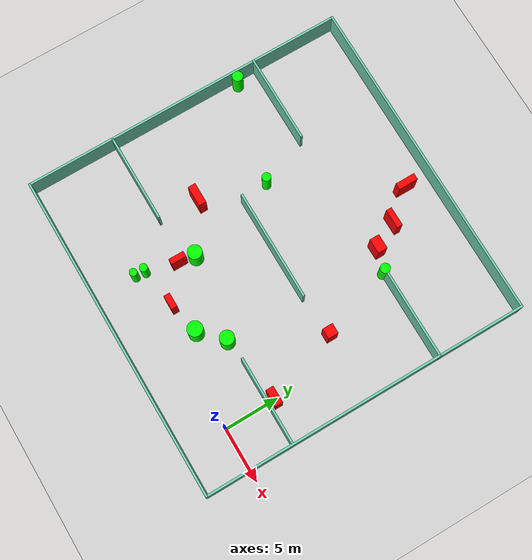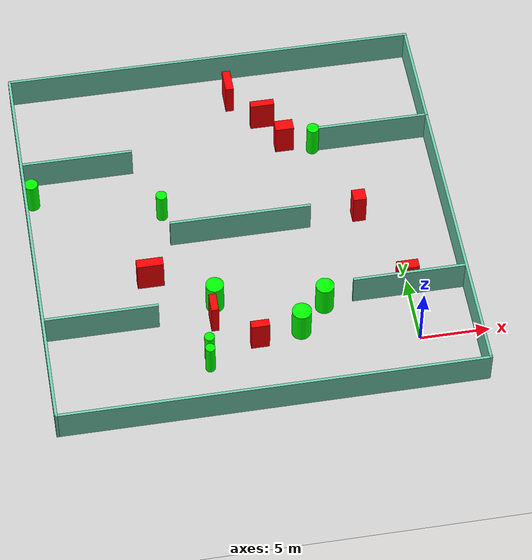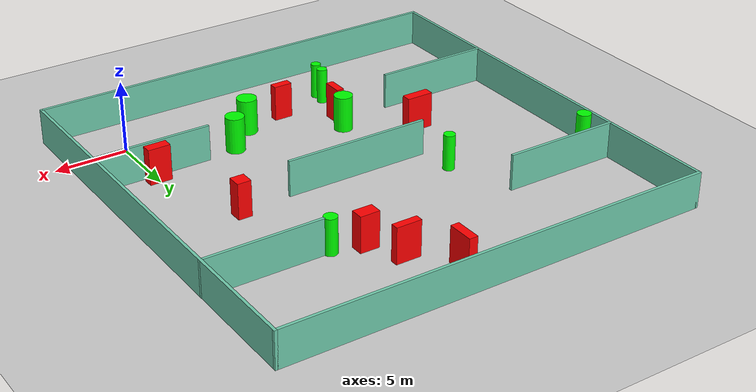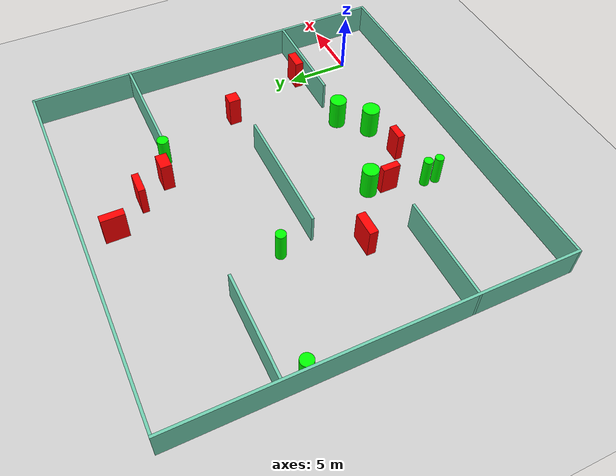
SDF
<sdf version="1.7">
 <world name="default">
  <light name="sun" type="directional">
   <pose>0 0 10 0 -0 0</pose>
   <diffuse>0.8 0.8 0.8 1</diffuse>
   <specular>0.2 0.2 0.2 1</specular>
   <attenuation>
    <range>1000</range>
    <constant>0.9</constant>
    <linear>0.01</linear>
    <quadratic>0.001</quadratic>
   </attenuation>
   <direction>-0.5 0.1 -0.9</direction>
   <spot><inner_angle>0</inner_angle><outer_angle>0</outer_angle><falloff>0</falloff></spot>
  </light>
  <model name="ground_plane">
   <static>1</static>
   <link name="link">
    <collision name="collision">
     <geometry><plane><normal>0 0 1</normal><size>100 100</size></plane></geometry>
     <surface>
      <contact><collide_bitmask>65535</collide_bitmask></contact>
      <friction><ode><mu>100</mu><mu2>50</mu2></ode></friction>
     </surface>
    </collision>
    <visual name="visual">
     <cast_shadows>0</cast_shadows>
     <geometry><plane><normal>0 0 1</normal><size>100 100</size></plane></geometry>
     <material>
      <script><uri>file://media/materials/scripts/gazebo.material</uri><name>Gazebo/Grey</name></script>
     </material>
    </visual>
   </link>
  </model>
  <gravity>0 0 -9.8</gravity>
  <magnetic_field>6e-06 2.3e-05 -4.2e-05</magnetic_field>
  <atmosphere type="adiabatic"/>
  <physics type="ode">
   <max_step_size>0.001</max_step_size>
   <real_time_factor>1</real_time_factor>
   <real_time_update_rate>1000</real_time_update_rate>
  </physics>
  <scene><ambient>0.4 0.4 0.4 1</ambient><background>0.7 0.7 0.7 1</background><shadows>1</shadows></scene>
  <spherical_coordinates>
   <surface_model>EARTH_WGS84</surface_model>
   <latitude_deg>0</latitude_deg>
   <longitude_deg>0</longitude_deg>
   <elevation>0</elevation>
   <heading_deg>0</heading_deg>
  </spherical_coordinates>
  <model name="my_base_walls">
   <link name="Wall_10">
    <collision name="Wall_10_Collision">
     <geometry><box><size>8.2 0.2 2.5</size></box></geometry>
     <pose>0 0 1.25 0 -0 0</pose>
    </collision>
    <visual name="Wall_10_Visual">
     <pose>0 0 1.25 0 -0 0</pose>
     <geometry><box><size>8.2 0.2 2.5</size></box></geometry>
     <material>
      <script><uri>file://media/materials/scripts/gazebo.material</uri><name>Gazebo/Grey</name></script>
      <ambient>0.435294 0.796078 0.67451 1</ambient>
     </material>
     <meta><layer>0</layer></meta>
    </visual>
    <pose>-11 -7 0 0 -0 0</pose>
   </link>
   <link name="Wall_12">
    <collision name="Wall_12_Collision">
     <geometry><box><size>8.2 0.2 2.5</size></box></geometry>
     <pose>0 0 1.25 0 -0 0</pose>
    </collision>
    <visual name="Wall_12_Visual">
     <pose>0 0 1.25 0 -0 0</pose>
     <geometry><box><size>8.2 0.2 2.5</size></box></geometry>
     <material>
      <script><uri>file://media/materials/scripts/gazebo.material</uri><name>Gazebo/Grey</name></script>
      <ambient>0.435294 0.796078 0.67451 1</ambient>
     </material>
     <meta><layer>0</layer></meta>
    </visual>
    <pose>-11 7 0 0 -0 0</pose>
   </link>
   <link name="Wall_14">
    <collision name="Wall_14_Collision">
     <geometry><box><size>8.2 0.2 2.5</size></box></geometry>
     <pose>0 0 1.25 0 -0 0</pose>
    </collision>
    <visual name="Wall_14_Visual">
     <pose>0 0 1.25 0 -0 0</pose>
     <geometry><box><size>8.2 0.2 2.5</size></box></geometry>
     <material>
      <script><uri>file://media/materials/scripts/gazebo.material</uri><name>Gazebo/Grey</name></script>
      <ambient>0.435294 0.796078 0.67451 1</ambient>
     </material>
     <meta><layer>0</layer></meta>
    </visual>
    <pose>11 7 0 0 -0 3.14159</pose>
   </link>
   <link name="Wall_16">
    <collision name="Wall_16_Collision">
     <geometry><box><size>10.2 0.2 2.5</size></box></geometry>
     <pose>0 0 1.25 0 -0 0</pose>
    </collision>
    <visual name="Wall_16_Visual">
     <pose>0 0 1.25 0 -0 0</pose>
     <geometry><box><size>10.2 0.2 2.5</size></box></geometry>
     <material>
      <script><uri>file://media/materials/scripts/gazebo.material</uri><name>Gazebo/Grey</name></script>
      <ambient>0.435294 0.796078 0.67451 1</ambient>
     </material>
     <meta><layer>0</layer></meta>
    </visual>
    <pose>0 0 0 0 -0 3.14159</pose>
   </link>
   <link name="Wall_2">
    <collision name="Wall_2_Collision">
     <geometry><box><size>30.2 0.2 2.5</size></box></geometry>
     <pose>0 0 1.25 0 -0 0</pose>
    </collision>
    <visual name="Wall_2_Visual">
     <pose>0 0 1.25 0 -0 0</pose>
     <geometry><box><size>30.2 0.2 2.5</size></box></geometry>
     <material>
      <script><uri>file://media/materials/scripts/gazebo.material</uri><name>Gazebo/Grey</name></script>
      <ambient>0.435294 0.796078 0.67451 1</ambient>
     </material>
     <meta><layer>0</layer></meta>
    </visual>
    <pose>0 -15 0 0 -0 3.14159</pose>
   </link>
   <link name="Wall_3">
    <collision name="Wall_3_Collision">
     <geometry><box><size>30.2 0.2 2.5</size></box></geometry>
     <pose>0 0 1.25 0 -0 0</pose>
    </collision>
    <visual name="Wall_3_Visual">
     <pose>0 0 1.25 0 -0 0</pose>
     <geometry><box><size>30.2 0.2 2.5</size></box></geometry>
     <material>
      <script><uri>file://media/materials/scripts/gazebo.material</uri><name>Gazebo/Grey</name></script>
      <ambient>0.435294 0.796078 0.67451 1</ambient>
     </material>
     <meta><layer>0</layer></meta>
    </visual>
    <pose>-15 0 0 0 -0 1.5708</pose>
   </link>
   <link name="Wall_4">
    <collision name="Wall_4_Collision">
     <geometry><box><size>30.2 0.2 2.5</size></box></geometry>
     <pose>0 0 1.25 0 -0 0</pose>
    </collision>
    <visual name="Wall_4_Visual">
     <pose>0 0 1.25 0 -0 0</pose>
     <geometry><box><size>30.2 0.2 2.5</size></box></geometry>
     <material>
      <script><uri>file://media/materials/scripts/gazebo.material</uri><name>Gazebo/Grey</name></script>
      <ambient>0.435294 0.796078 0.67451 1</ambient>
     </material>
     <meta><layer>0</layer></meta>
    </visual>
    <pose>0 15 0 0 -0 0</pose>
   </link>
   <link name="Wall_6">
    <collision name="Wall_6_Collision">
     <geometry><box><size>30.2 0.2 2.5</size></box></geometry>
     <pose>0 0 1.25 0 -0 0</pose>
    </collision>
    <visual name="Wall_6_Visual">
     <pose>0 0 1.25 0 -0 0</pose>
     <geometry><box><size>30.2 0.2 2.5</size></box></geometry>
     <material>
      <script><uri>file://media/materials/scripts/gazebo.material</uri><name>Gazebo/Grey</name></script>
      <ambient>0.435294 0.796078 0.67451 1</ambient>
     </material>
     <meta><layer>0</layer></meta>
    </visual>
    <pose>15 0 0 0 -0 1.5708</pose>
   </link>
   <link name="Wall_8">
    <collision name="Wall_8_Collision">
     <geometry><box><size>8.2 0.2 2.5</size></box></geometry>
     <pose>0 0 1.25 0 -0 0</pose>
    </collision>
    <visual name="Wall_8_Visual">
     <pose>0 0 1.25 0 -0 0</pose>
     <geometry><box><size>8.2 0.2 2.5</size></box></geometry>
     <material>
      <script><uri>file://media/materials/scripts/gazebo.material</uri><name>Gazebo/Grey</name></script>
      <ambient>0.435294 0.796078 0.67451 1</ambient>
     </material>
     <meta><layer>0</layer></meta>
    </visual>
    <pose>11 -7 0 0 -0 3.14159</pose>
   </link>
   <static>1</static>
   <pose>-11 11 0 0 -0 0</pose>
  </model>
  <model name="cylinder1">
   <static>1</static>
   <link name="link">
    <inertial>
     <mass>1</mass>
     <inertia><ixx>0.5</ixx><ixy>0</ixy><ixz>0</ixz><iyy>0.5</iyy><iyz>0</iyz><izz>1</izz></inertia>
    </inertial>
    <collision name="collision">
     <geometry><cylinder><radius>0.35888137583337265</radius><length>2.5</length></cylinder></geometry>
    </collision>
    <visual name="visual">
     <geometry><cylinder><radius>0.35888137583337265</radius><length>2.5</length></cylinder></geometry>
     <material>
      <ambient>0 1 0 1</ambient>
      <diffuse>0 1 0 1</diffuse>
      <specular>0.1 0.1 0.1 1</specular>
      <emissive>0 0 0 0</emissive>
     </material>
    </visual>
   </link>
   <pose>-14.800472974584556 0.7684433232465304 1.25 0 0 0</pose>
  </model>
  <model name="cylinder2">
   <static>1</static>
   <link name="link">
    <inertial>
     <mass>1</mass>
     <inertia><ixx>0.5</ixx><ixy>0</ixy><ixz>0</ixz><iyy>0.5</iyy><iyz>0</iyz><izz>1</izz></inertia>
    </inertial>
    <collision name="collision">
     <geometry><cylinder><radius>0.6444078868004651</radius><length>2.5</length></cylinder></geometry>
    </collision>
    <visual name="visual">
     <geometry><cylinder><radius>0.6444078868004651</radius><length>2.5</length></cylinder></geometry>
     <material>
      <ambient>0 1 0 1</ambient>
      <diffuse>0 1 0 1</diffuse>
      <specular>0.1 0.1 0.1 1</specular>
      <emissive>0 0 0 0</emissive>
     </material>
    </visual>
   </link>
   <pose>-13.77166727941637 5.095694531775308 1.25 0 0 0</pose>
  </model>
  <model name="cylinder3">
   <static>1</static>
   <link name="link">
    <inertial>
     <mass>1</mass>
     <inertia><ixx>0.5</ixx><ixy>0</ixy><ixz>0</ixz><iyy>0.5</iyy><iyz>0</iyz><izz>1</izz></inertia>
    </inertial>
    <collision name="collision">
     <geometry><cylinder><radius>0.4897141702440644</radius><length>2.5</length></cylinder></geometry>
    </collision>
    <visual name="visual">
     <geometry><cylinder><radius>0.4897141702440644</radius><length>2.5</length></cylinder></geometry>
     <material>
      <ambient>0 1 0 1</ambient>
      <diffuse>0 1 0 1</diffuse>
      <specular>0.1 0.1 0.1 1</specular>
      <emissive>0 0 0 0</emissive>
     </material>
    </visual>
   </link>
   <pose>-25.477867785344234 16.07333065835223 1.25 0 0 0</pose>
  </model>
  <model name="cylinder4">
   <static>1</static>
   <link name="link">
    <inertial>
     <mass>1</mass>
     <inertia><ixx>0.5</ixx><ixy>0</ixy><ixz>0</ixz><iyy>0.5</iyy><iyz>0</iyz><izz>1</izz></inertia>
    </inertial>
    <collision name="collision">
     <geometry><cylinder><radius>0.4459564544500559</radius><length>2.5</length></cylinder></geometry>
    </collision>
    <visual name="visual">
     <geometry><cylinder><radius>0.4459564544500559</radius><length>2.5</length></cylinder></geometry>
     <material>
      <ambient>0 1 0 1</ambient>
      <diffuse>0 1 0 1</diffuse>
      <specular>0.1 0.1 0.1 1</specular>
      <emissive>0 0 0 0</emissive>
     </material>
    </visual>
   </link>
   <pose>-4.478116844944312 18.03272754851267 1.25 0 0 0</pose>
  </model>
  <model name="cylinder5">
   <static>1</static>
   <link name="link">
    <inertial>
     <mass>1</mass>
     <inertia><ixx>0.5</ixx><ixy>0</ixy><ixz>0</ixz><iyy>0.5</iyy><iyz>0</iyz><izz>1</izz></inertia>
    </inertial>
    <collision name="collision">
     <geometry><cylinder><radius>0.39902212339663445</radius><length>2.5</length></cylinder></geometry>
    </collision>
    <visual name="visual">
     <geometry><cylinder><radius>0.39902212339663445</radius><length>2.5</length></cylinder></geometry>
     <material>
      <ambient>0 1 0 1</ambient>
      <diffuse>0 1 0 1</diffuse>
      <specular>0.1 0.1 0.1 1</specular>
      <emissive>0 0 0 0</emissive>
     </material>
    </visual>
   </link>
   <pose>-16.343795756342956 13.583446711220187 1.25 0 0 0</pose>
  </model>
  <model name="cylinder6">
   <static>1</static>
   <link name="link">
    <inertial>
     <mass>1</mass>
     <inertia><ixx>0.5</ixx><ixy>0</ixy><ixz>0</ixz><iyy>0.5</iyy><iyz>0</iyz><izz>1</izz></inertia>
    </inertial>
    <collision name="collision">
     <geometry><cylinder><radius>0.34318770206753446</radius><length>2.5</length></cylinder></geometry>
    </collision>
    <visual name="visual">
     <geometry><cylinder><radius>0.34318770206753446</radius><length>2.5</length></cylinder></geometry>
     <material>
      <ambient>0 1 0 1</ambient>
      <diffuse>0 1 0 1</diffuse>
      <specular>0.1 0.1 0.1 1</specular>
      <emissive>0 0 0 0</emissive>
     </material>
    </visual>
   </link>
   <pose>-14.885735074433711 -0.15364434477985034 1.25 0 0 0</pose>
  </model>
  <model name="cylinder7">
   <static>1</static>
   <link name="link">
    <inertial>
     <mass>1</mass>
     <inertia><ixx>0.5</ixx><ixy>0</ixy><ixz>0</ixz><iyy>0.5</iyy><iyz>0</iyz><izz>1</izz></inertia>
    </inertial>
    <collision name="collision">
     <geometry><cylinder><radius>0.6532046173508238</radius><length>2.5</length></cylinder></geometry>
    </collision>
    <visual name="visual">
     <geometry><cylinder><radius>0.6532046173508238</radius><length>2.5</length></cylinder></geometry>
     <material>
      <ambient>0 1 0 1</ambient>
      <diffuse>0 1 0 1</diffuse>
      <specular>0.1 0.1 0.1 1</specular>
      <emissive>0 0 0 0</emissive>
     </material>
    </visual>
   </link>
   <pose>-6.155299551574217 3.783226294448003 1.25 0 0 0</pose>
  </model>
  <model name="cylinder8">
   <static>1</static>
   <link name="link">
    <inertial>
     <mass>1</mass>
     <inertia><ixx>0.5</ixx><ixy>0</ixy><ixz>0</ixz><iyy>0.5</iyy><iyz>0</iyz><izz>1</izz></inertia>
    </inertial>
    <collision name="collision">
     <geometry><cylinder><radius>0.6895210541287279</radius><length>2.5</length></cylinder></geometry>
    </collision>
    <visual name="visual">
     <geometry><cylinder><radius>0.6895210541287279</radius><length>2.5</length></cylinder></geometry>
     <material>
      <ambient>0 1 0 1</ambient>
      <diffuse>0 1 0 1</diffuse>
      <specular>0.1 0.1 0.1 1</specular>
      <emissive>0 0 0 0</emissive>
     </material>
    </visual>
   </link>
   <pose>-8.135792056397651 1.8898511625572674 1.25 0 0 0</pose>
  </model>
  <model name="box1">
   <static>1</static>
   <link name="link">
    <inertial>
     <mass>1</mass>
     <inertia><ixx>0.083</ixx><ixy>0</ixy><ixz>0</ixz><iyy>0.083</iyy><iyz>0</iyz><izz>0.083</izz></inertia>
    </inertial>
    <collision name="collision">
     <geometry><box><size>1.900327875069905 0.6883442123304547 2.5</size></box></geometry>
    </collision>
    <visual name="visual">
     <geometry><box><size>1.900327875069905 0.6883442123304547 2.5</size></box></geometry>
     <material>
      <ambient>1 0 0 1</ambient>
      <diffuse>1 0 0 1</diffuse>
      <specular>0.1 0.1 0.1 1</specular>
      <emissive>0 0 0 0</emissive>
     </material>
    </visual>
    <sensor name="my_contact" type="contact">
     <contact><collision>box_collision</collision><topic>__default_topic__</topic></contact>
    </sensor>
   </link>
   <pose>-17.994369034501567 7.74879411769659 1.25 0 0 0</pose>
  </model>
  <model name="box2">
   <static>1</static>
   <link name="link">
    <inertial>
     <mass>1</mass>
     <inertia><ixx>0.083</ixx><ixy>0</ixy><ixz>0</ixz><iyy>0.083</iyy><iyz>0</iyz><izz>0.083</izz></inertia>
    </inertial>
    <collision name="collision">
     <geometry><box><size>1.5404613427093783 0.6992877625048404 2.5</size></box></geometry>
    </collision>
    <visual name="visual">
     <geometry><box><size>1.5404613427093783 0.6992877625048404 2.5</size></box></geometry>
     <material>
      <ambient>1 0 0 1</ambient>
      <diffuse>1 0 0 1</diffuse>
      <specular>0.1 0.1 0.1 1</specular>
      <emissive>0 0 0 0</emissive>
     </material>
    </visual>
    <sensor name="my_contact" type="contact">
     <contact><collision>box_collision</collision><topic>__default_topic__</topic></contact>
    </sensor>
   </link>
   <pose>-0.058694419051420255 4.680402535411012 1.25 0 0 0</pose>
  </model>
  <model name="box3">
   <static>1</static>
   <link name="link">
    <inertial>
     <mass>1</mass>
     <inertia><ixx>0.083</ixx><ixy>0</ixy><ixz>0</ixz><iyy>0.083</iyy><iyz>0</iyz><izz>0.083</izz></inertia>
    </inertial>
    <collision name="collision">
     <geometry><box><size>0.5983717381779028 1.8074083056456256 2.5</size></box></geometry>
    </collision>
    <visual name="visual">
     <geometry><box><size>0.5983717381779028 1.8074083056456256 2.5</size></box></geometry>
     <material>
      <ambient>1 0 0 1</ambient>
      <diffuse>1 0 0 1</diffuse>
      <specular>0.1 0.1 0.1 1</specular>
      <emissive>0 0 0 0</emissive>
     </material>
    </visual>
    <sensor name="my_contact" type="contact">
     <contact><collision>box_collision</collision><topic>__default_topic__</topic></contact>
    </sensor>
   </link>
   <pose>-9.92810377923147 23.58971529015581 1.25 0 0 0</pose>
  </model>
  <model name="box4">
   <static>1</static>
   <link name="link">
    <inertial>
     <mass>1</mass>
     <inertia><ixx>0.083</ixx><ixy>0</ixy><ixz>0</ixz><iyy>0.083</iyy><iyz>0</iyz><izz>0.083</izz></inertia>
    </inertial>
    <collision name="collision">
     <geometry><box><size>1.3516057868846847 0.8809104700976135 2.5</size></box></geometry>
    </collision>
    <visual name="visual">
     <geometry><box><size>1.3516057868846847 0.8809104700976135 2.5</size></box></geometry>
     <material>
      <ambient>1 0 0 1</ambient>
      <diffuse>1 0 0 1</diffuse>
      <specular>0.1 0.1 0.1 1</specular>
      <emissive>0 0 0 0</emissive>
     </material>
    </visual>
    <sensor name="my_contact" type="contact">
     <contact><collision>box_collision</collision><topic>__default_topic__</topic></contact>
    </sensor>
   </link>
   <pose>-6.531515865246272 18.660286367864913 1.25 0 0 0</pose>
  </model>
  <model name="box5">
   <static>1</static>
   <link name="link">
    <inertial>
     <mass>1</mass>
     <inertia><ixx>0.083</ixx><ixy>0</ixy><ixz>0</ixz><iyy>0.083</iyy><iyz>0</iyz><izz>0.083</izz></inertia>
    </inertial>
    <collision name="collision">
     <geometry><box><size>0.5287421549843658 1.3940753188339414 2.5</size></box></geometry>
    </collision>
    <visual name="visual">
     <geometry><box><size>0.5287421549843658 1.3940753188339414 2.5</size></box></geometry>
     <material>
      <ambient>1 0 0 1</ambient>
      <diffuse>1 0 0 1</diffuse>
      <specular>0.1 0.1 0.1 1</specular>
      <emissive>0 0 0 0</emissive>
     </material>
    </visual>
    <sensor name="my_contact" type="contact">
     <contact><collision>box_collision</collision><topic>__default_topic__</topic></contact>
    </sensor>
   </link>
   <pose>-14.070128925466953 3.612275935493315 1.25 0 0 0</pose>
  </model>
  <model name="box6">
   <static>1</static>
   <link name="link">
    <inertial>
     <mass>1</mass>
     <inertia><ixx>0.083</ixx><ixy>0</ixy><ixz>0</ixz><iyy>0.083</iyy><iyz>0</iyz><izz>0.083</izz></inertia>
    </inertial>
    <collision name="collision">
     <geometry><box><size>1.3011076005979914 0.5686365499712489 2.5</size></box></geometry>
    </collision>
    <visual name="visual">
     <geometry><box><size>1.3011076005979914 0.5686365499712489 2.5</size></box></geometry>
     <material>
      <ambient>1 0 0 1</ambient>
      <diffuse>1 0 0 1</diffuse>
      <specular>0.1 0.1 0.1 1</specular>
      <emissive>0 0 0 0</emissive>
     </material>
    </visual>
    <sensor name="my_contact" type="contact">
     <contact><collision>box_collision</collision><topic>__default_topic__</topic></contact>
    </sensor>
   </link>
   <pose>-11.173105385396617 1.3023775964511648 1.25 0 0 0</pose>
  </model>
  <model name="box7">
   <static>1</static>
   <link name="link">
    <inertial>
     <mass>1</mass>
     <inertia><ixx>0.083</ixx><ixy>0</ixy><ixz>0</ixz><iyy>0.083</iyy><iyz>0</iyz><izz>0.083</izz></inertia>
    </inertial>
    <collision name="collision">
     <geometry><box><size>1.756518836805367 0.5231622504533522 2.5</size></box></geometry>
    </collision>
    <visual name="visual">
     <geometry><box><size>1.756518836805367 0.5231622504533522 2.5</size></box></geometry>
     <material>
      <ambient>1 0 0 1</ambient>
      <diffuse>1 0 0 1</diffuse>
      <specular>0.1 0.1 0.1 1</specular>
      <emissive>0 0 0 0</emissive>
     </material>
    </visual>
    <sensor name="my_contact" type="contact">
     <contact><collision>box_collision</collision><topic>__default_topic__</topic></contact>
    </sensor>
   </link>
   <pose>-7.778394298518402 20.994035363662945 1.25 0 0 0</pose>
  </model>
  <model name="box8">
   <static>1</static>
   <link name="link">
    <inertial>
     <mass>1</mass>
     <inertia><ixx>0.083</ixx><ixy>0</ixy><ixz>0</ixz><iyy>0.083</iyy><iyz>0</iyz><izz>0.083</izz></inertia>
    </inertial>
    <collision name="collision">
     <geometry><box><size>0.9527336645072477 0.9500482835496319 2.5</size></box></geometry>
    </collision>
    <visual name="visual">
     <geometry><box><size>0.9527336645072477 0.9500482835496319 2.5</size></box></geometry>
     <material>
      <ambient>1 0 0 1</ambient>
      <diffuse>1 0 0 1</diffuse>
      <specular>0.1 0.1 0.1 1</specular>
      <emissive>0 0 0 0</emissive>
     </material>
    </visual>
    <sensor name="my_contact" type="contact">
     <contact><collision>box_collision</collision><topic>__default_topic__</topic></contact>
    </sensor>
   </link>
   <pose>-2.2949424297387857 11.363435606871779 1.25 0 0 0</pose>
  </model>
 </world>
</sdf>
